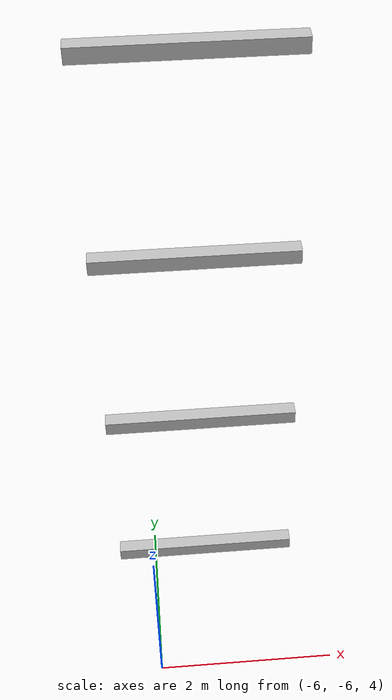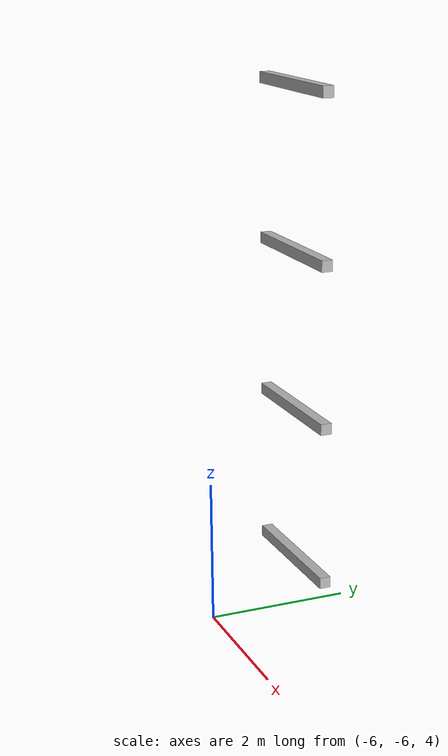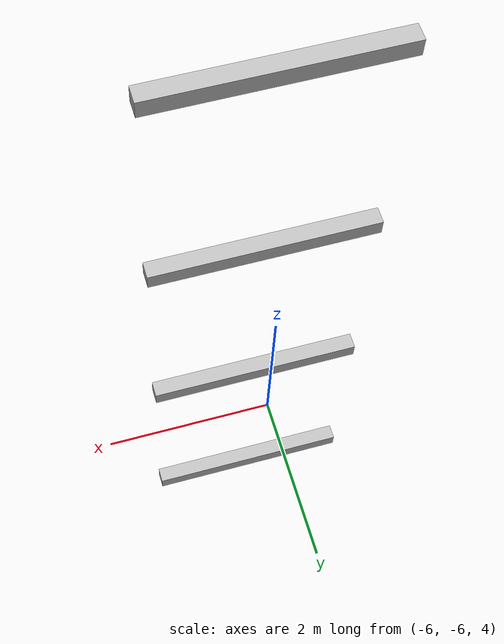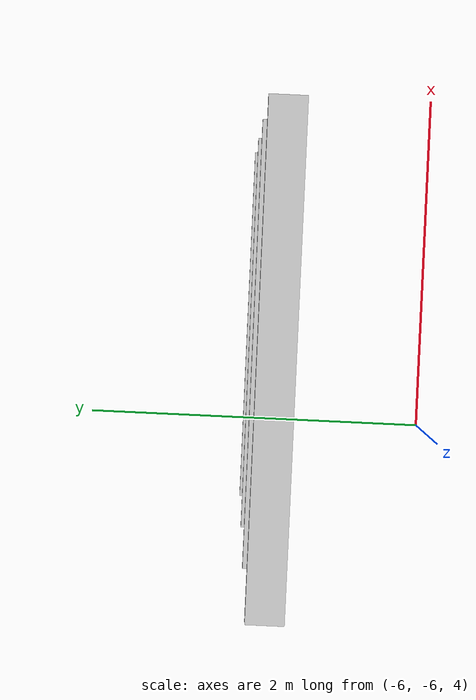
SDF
<sdf version="1.7">
 <world name="default">
  <model name="orthogonal_747_2.000.15_TS">
   <static>1</static>
   <link name="x_link_3_0_0">
    <inertial>
     <mass>1</mass>
     <inertia>
      <ixx>0.166667</ixx>
      <ixy>0</ixy>
      <ixz>0</ixz>
      <iyy>0.166667</iyy>
      <iyz>0</iyz>
      <izz>0.166667</izz>
     </inertia>
    </inertial>
    <pose>1.075 0 7.525 0 -0 0</pose>
    <visual name="visual_0">
     <laser_retro>2556</laser_retro>
     <geometry><box><size>2 1e-06 0.15</size></box></geometry>
     <material>
      <script><name>Gazebo/Grey</name><uri>file://media/materials/scripts/gazebo.material</uri></script>
      <shader type="pixel"><normal_map>__default__</normal_map></shader>
      <ambient>0.678 0.498 0.659 1</ambient>
      <diffuse>0.7 0.7 0.7 1</diffuse>
      <specular>0.01 0.01 0.01 1</specular>
      <emissive>0 0 0 1</emissive>
     </material>
     <pose>0 -0.075 0 0 -0 0</pose>
     <transparency>1</transparency>
    </visual>
    <visual name="visual_1">
     <laser_retro>2557</laser_retro>
     <geometry><box><size>2 1e-06 0.15</size></box></geometry>
     <material>
      <script><name>Gazebo/Grey</name><uri>file://media/materials/scripts/gazebo.material</uri></script>
      <shader type="pixel"><normal_map>__default__</normal_map></shader>
      <ambient>0.447 0.624 0.812 1</ambient>
      <diffuse>0.7 0.7 0.7 1</diffuse>
      <specular>0.01 0.01 0.01 1</specular>
      <emissive>0 0 0 1</emissive>
     </material>
     <pose>0 0.075 0 0 -0 0</pose>
     <transparency>1</transparency>
    </visual>
    <visual name="visual_2">
     <laser_retro>2558</laser_retro>
     <geometry><box><size>2 0.15 1e-06</size></box></geometry>
     <material>
      <script><name>Gazebo/Grey</name><uri>file://media/materials/scripts/gazebo.material</uri></script>
      <shader type="pixel"><normal_map>__default__</normal_map></shader>
      <ambient>0.988 0.686 0.243 1</ambient>
      <diffuse>0.7 0.7 0.7 1</diffuse>
      <specular>0.01 0.01 0.01 1</specular>
      <emissive>0 0 0 1</emissive>
     </material>
     <pose>0 0 -0.075 0 -0 0</pose>
     <transparency>1</transparency>
    </visual>
    <visual name="visual_3">
     <laser_retro>2559</laser_retro>
     <geometry><box><size>1e-06 0.15 0.15</size></box></geometry>
     <material>
      <script><name>Gazebo/Grey</name><uri>file://media/materials/scripts/gazebo.material</uri></script>
      <shader type="pixel"><normal_map>__default__</normal_map></shader>
      <ambient>0.988 0.914 0.31 1</ambient>
      <diffuse>0.7 0.7 0.7 1</diffuse>
      <specular>0.01 0.01 0.01 1</specular>
      <emissive>0 0 0 1</emissive>
     </material>
     <pose>1 0 0 0 -0 0</pose>
     <transparency>1</transparency>
    </visual>
    <visual name="visual_4">
     <laser_retro>2560</laser_retro>
     <geometry><box><size>2 0.15 1e-06</size></box></geometry>
     <material>
      <script><name>Gazebo/Grey</name><uri>file://media/materials/scripts/gazebo.material</uri></script>
      <shader type="pixel"><normal_map>__default__</normal_map></shader>
      <ambient>0.937 0.161 0.161 1</ambient>
      <diffuse>0.7 0.7 0.7 1</diffuse>
      <specular>0.01 0.01 0.01 1</specular>
      <emissive>0 0 0 1</emissive>
     </material>
     <pose>0 0 0.075 0 -0 0</pose>
     <transparency>1</transparency>
    </visual>
    <visual name="visual_5">
     <laser_retro>2561</laser_retro>
     <geometry><box><size>1e-06 0.15 0.15</size></box></geometry>
     <material>
      <script><name>Gazebo/Grey</name><uri>file://media/materials/scripts/gazebo.material</uri></script>
      <shader type="pixel"><normal_map>__default__</normal_map></shader>
      <ambient>0.541 0.886 0.204 1</ambient>
      <diffuse>0.7 0.7 0.7 1</diffuse>
      <specular>0.01 0.01 0.01 1</specular>
      <emissive>0 0 0 1</emissive>
     </material>
     <pose>-1 0 0 0 -0 0</pose>
     <transparency>1</transparency>
    </visual>
    <visual name="visual_texture">
     <geometry><box><size>1.9998 0.149985 0.149985</size></box></geometry>
     <material>
      <script>
       <uri>model://BASE_MODELS/simple_block_v2_textured/materials/scripts</uri>
       <uri>model://BASE_MODELS/simple_block_v2_textured/materials/textures</uri>
       <name>metal</name>
      </script>
     </material>
     <laser_retro>2562</laser_retro>
    </visual>
    <collision name="collision">
     <geometry><box><size>2 0.15 0.15</size></box></geometry>
     <surface>
      <friction>
       <ode><mu>1</mu><mu2>1</mu2><fdir1>0 0 0</fdir1><slip1>0</slip1><slip2>0</slip2></ode>
       <torsional>
        <coefficient>1</coefficient>
        <patch_radius>0</patch_radius>
        <surface_radius>0</surface_radius>
        <use_patch_radius>1</use_patch_radius>
        <ode><slip>0</slip></ode>
       </torsional>
      </friction>
      <bounce><restitution_coefficient>0</restitution_coefficient><threshold>1e+06</threshold></bounce>
      <contact>
       <collide_without_contact>0</collide_without_contact>
       <collide_without_contact_bitmask>1</collide_without_contact_bitmask>
       <collide_bitmask>1</collide_bitmask>
       <ode>
        <soft_cfm>0</soft_cfm>
        <soft_erp>0.2</soft_erp>
        <kp>1e+13</kp>
        <kd>1</kd>
        <max_vel>0.01</max_vel>
        <min_depth>0</min_depth>
       </ode>
       <bullet>
        <split_impulse>1</split_impulse>
        <split_impulse_penetration_threshold>-0.01</split_impulse_penetration_threshold>
        <soft_cfm>0</soft_cfm>
        <soft_erp>0.2</soft_erp>
        <kp>1e+13</kp>
        <kd>1</kd>
       </bullet>
      </contact>
     </surface>
    </collision>
   </link>
   <link name="x_link_4_0_0">
    <inertial>
     <mass>1</mass>
     <inertia>
      <ixx>0.166667</ixx>
      <ixy>0</ixy>
      <ixz>0</ixz>
      <iyy>0.166667</iyy>
      <iyz>0</iyz>
      <izz>0.166667</izz>
     </inertia>
    </inertial>
    <pose>1.075 0 9.675 0 -0 0</pose>
    <visual name="visual_0">
     <laser_retro>3459</laser_retro>
     <geometry><box><size>2 1e-06 0.15</size></box></geometry>
     <material>
      <script><name>Gazebo/Grey</name><uri>file://media/materials/scripts/gazebo.material</uri></script>
      <shader type="pixel"><normal_map>__default__</normal_map></shader>
      <ambient>0.678 0.498 0.659 1</ambient>
      <diffuse>0.7 0.7 0.7 1</diffuse>
      <specular>0.01 0.01 0.01 1</specular>
      <emissive>0 0 0 1</emissive>
     </material>
     <pose>0 -0.075 0 0 -0 0</pose>
     <transparency>1</transparency>
    </visual>
    <visual name="visual_1">
     <laser_retro>3460</laser_retro>
     <geometry><box><size>2 1e-06 0.15</size></box></geometry>
     <material>
      <script><name>Gazebo/Grey</name><uri>file://media/materials/scripts/gazebo.material</uri></script>
      <shader type="pixel"><normal_map>__default__</normal_map></shader>
      <ambient>0.447 0.624 0.812 1</ambient>
      <diffuse>0.7 0.7 0.7 1</diffuse>
      <specular>0.01 0.01 0.01 1</specular>
      <emissive>0 0 0 1</emissive>
     </material>
     <pose>0 0.075 0 0 -0 0</pose>
     <transparency>1</transparency>
    </visual>
    <visual name="visual_2">
     <laser_retro>3461</laser_retro>
     <geometry><box><size>2 0.15 1e-06</size></box></geometry>
     <material>
      <script><name>Gazebo/Grey</name><uri>file://media/materials/scripts/gazebo.material</uri></script>
      <shader type="pixel"><normal_map>__default__</normal_map></shader>
      <ambient>0.988 0.686 0.243 1</ambient>
      <diffuse>0.7 0.7 0.7 1</diffuse>
      <specular>0.01 0.01 0.01 1</specular>
      <emissive>0 0 0 1</emissive>
     </material>
     <pose>0 0 -0.075 0 -0 0</pose>
     <transparency>1</transparency>
    </visual>
    <visual name="visual_3">
     <laser_retro>3462</laser_retro>
     <geometry><box><size>1e-06 0.15 0.15</size></box></geometry>
     <material>
      <script><name>Gazebo/Grey</name><uri>file://media/materials/scripts/gazebo.material</uri></script>
      <shader type="pixel"><normal_map>__default__</normal_map></shader>
      <ambient>0.988 0.914 0.31 1</ambient>
      <diffuse>0.7 0.7 0.7 1</diffuse>
      <specular>0.01 0.01 0.01 1</specular>
      <emissive>0 0 0 1</emissive>
     </material>
     <pose>1 0 0 0 -0 0</pose>
     <transparency>1</transparency>
    </visual>
    <visual name="visual_4">
     <laser_retro>3463</laser_retro>
     <geometry><box><size>2 0.15 1e-06</size></box></geometry>
     <material>
      <script><name>Gazebo/Grey</name><uri>file://media/materials/scripts/gazebo.material</uri></script>
      <shader type="pixel"><normal_map>__default__</normal_map></shader>
      <ambient>0.937 0.161 0.161 1</ambient>
      <diffuse>0.7 0.7 0.7 1</diffuse>
      <specular>0.01 0.01 0.01 1</specular>
      <emissive>0 0 0 1</emissive>
     </material>
     <pose>0 0 0.075 0 -0 0</pose>
     <transparency>1</transparency>
    </visual>
    <visual name="visual_5">
     <laser_retro>3464</laser_retro>
     <geometry><box><size>1e-06 0.15 0.15</size></box></geometry>
     <material>
      <script><name>Gazebo/Grey</name><uri>file://media/materials/scripts/gazebo.material</uri></script>
      <shader type="pixel"><normal_map>__default__</normal_map></shader>
      <ambient>0.541 0.886 0.204 1</ambient>
      <diffuse>0.7 0.7 0.7 1</diffuse>
      <specular>0.01 0.01 0.01 1</specular>
      <emissive>0 0 0 1</emissive>
     </material>
     <pose>-1 0 0 0 -0 0</pose>
     <transparency>1</transparency>
    </visual>
    <visual name="visual_texture">
     <geometry><box><size>1.9998 0.149985 0.149985</size></box></geometry>
     <material>
      <script>
       <uri>model://BASE_MODELS/simple_block_v2_textured/materials/scripts</uri>
       <uri>model://BASE_MODELS/simple_block_v2_textured/materials/textures</uri>
       <name>metal</name>
      </script>
     </material>
     <laser_retro>3465</laser_retro>
    </visual>
    <collision name="collision">
     <geometry><box><size>2 0.15 0.15</size></box></geometry>
     <surface>
      <friction>
       <ode><mu>1</mu><mu2>1</mu2><fdir1>0 0 0</fdir1><slip1>0</slip1><slip2>0</slip2></ode>
       <torsional>
        <coefficient>1</coefficient>
        <patch_radius>0</patch_radius>
        <surface_radius>0</surface_radius>
        <use_patch_radius>1</use_patch_radius>
        <ode><slip>0</slip></ode>
       </torsional>
      </friction>
      <bounce><restitution_coefficient>0</restitution_coefficient><threshold>1e+06</threshold></bounce>
      <contact>
       <collide_without_contact>0</collide_without_contact>
       <collide_without_contact_bitmask>1</collide_without_contact_bitmask>
       <collide_bitmask>1</collide_bitmask>
       <ode>
        <soft_cfm>0</soft_cfm>
        <soft_erp>0.2</soft_erp>
        <kp>1e+13</kp>
        <kd>1</kd>
        <max_vel>0.01</max_vel>
        <min_depth>0</min_depth>
       </ode>
       <bullet>
        <split_impulse>1</split_impulse>
        <split_impulse_penetration_threshold>-0.01</split_impulse_penetration_threshold>
        <soft_cfm>0</soft_cfm>
        <soft_erp>0.2</soft_erp>
        <kp>1e+13</kp>
        <kd>1</kd>
       </bullet>
      </contact>
     </surface>
    </collision>
   </link>
   <link name="x_link_5_0_0">
    <inertial>
     <mass>1</mass>
     <inertia>
      <ixx>0.166667</ixx>
      <ixy>0</ixy>
      <ixz>0</ixz>
      <iyy>0.166667</iyy>
      <iyz>0</iyz>
      <izz>0.166667</izz>
     </inertia>
    </inertial>
    <pose>1.075 0 11.825 0 -0 0</pose>
    <visual name="visual_0">
     <laser_retro>4362</laser_retro>
     <geometry><box><size>2 1e-06 0.15</size></box></geometry>
     <material>
      <script><name>Gazebo/Grey</name><uri>file://media/materials/scripts/gazebo.material</uri></script>
      <shader type="pixel"><normal_map>__default__</normal_map></shader>
      <ambient>0.678 0.498 0.659 1</ambient>
      <diffuse>0.7 0.7 0.7 1</diffuse>
      <specular>0.01 0.01 0.01 1</specular>
      <emissive>0 0 0 1</emissive>
     </material>
     <pose>0 -0.075 0 0 -0 0</pose>
     <transparency>1</transparency>
    </visual>
    <visual name="visual_1">
     <laser_retro>4363</laser_retro>
     <geometry><box><size>2 1e-06 0.15</size></box></geometry>
     <material>
      <script><name>Gazebo/Grey</name><uri>file://media/materials/scripts/gazebo.material</uri></script>
      <shader type="pixel"><normal_map>__default__</normal_map></shader>
      <ambient>0.447 0.624 0.812 1</ambient>
      <diffuse>0.7 0.7 0.7 1</diffuse>
      <specular>0.01 0.01 0.01 1</specular>
      <emissive>0 0 0 1</emissive>
     </material>
     <pose>0 0.075 0 0 -0 0</pose>
     <transparency>1</transparency>
    </visual>
    <visual name="visual_2">
     <laser_retro>4364</laser_retro>
     <geometry><box><size>2 0.15 1e-06</size></box></geometry>
     <material>
      <script><name>Gazebo/Grey</name><uri>file://media/materials/scripts/gazebo.material</uri></script>
      <shader type="pixel"><normal_map>__default__</normal_map></shader>
      <ambient>0.988 0.686 0.243 1</ambient>
      <diffuse>0.7 0.7 0.7 1</diffuse>
      <specular>0.01 0.01 0.01 1</specular>
      <emissive>0 0 0 1</emissive>
     </material>
     <pose>0 0 -0.075 0 -0 0</pose>
     <transparency>1</transparency>
    </visual>
    <visual name="visual_3">
     <laser_retro>4365</laser_retro>
     <geometry><box><size>1e-06 0.15 0.15</size></box></geometry>
     <material>
      <script><name>Gazebo/Grey</name><uri>file://media/materials/scripts/gazebo.material</uri></script>
      <shader type="pixel"><normal_map>__default__</normal_map></shader>
      <ambient>0.988 0.914 0.31 1</ambient>
      <diffuse>0.7 0.7 0.7 1</diffuse>
      <specular>0.01 0.01 0.01 1</specular>
      <emissive>0 0 0 1</emissive>
     </material>
     <pose>1 0 0 0 -0 0</pose>
     <transparency>1</transparency>
    </visual>
    <visual name="visual_4">
     <laser_retro>4366</laser_retro>
     <geometry><box><size>2 0.15 1e-06</size></box></geometry>
     <material>
      <script><name>Gazebo/Grey</name><uri>file://media/materials/scripts/gazebo.material</uri></script>
      <shader type="pixel"><normal_map>__default__</normal_map></shader>
      <ambient>0.937 0.161 0.161 1</ambient>
      <diffuse>0.7 0.7 0.7 1</diffuse>
      <specular>0.01 0.01 0.01 1</specular>
      <emissive>0 0 0 1</emissive>
     </material>
     <pose>0 0 0.075 0 -0 0</pose>
     <transparency>1</transparency>
    </visual>
    <visual name="visual_5">
     <laser_retro>4367</laser_retro>
     <geometry><box><size>1e-06 0.15 0.15</size></box></geometry>
     <material>
      <script><name>Gazebo/Grey</name><uri>file://media/materials/scripts/gazebo.material</uri></script>
      <shader type="pixel"><normal_map>__default__</normal_map></shader>
      <ambient>0.541 0.886 0.204 1</ambient>
      <diffuse>0.7 0.7 0.7 1</diffuse>
      <specular>0.01 0.01 0.01 1</specular>
      <emissive>0 0 0 1</emissive>
     </material>
     <pose>-1 0 0 0 -0 0</pose>
     <transparency>1</transparency>
    </visual>
    <visual name="visual_texture">
     <geometry><box><size>1.9998 0.149985 0.149985</size></box></geometry>
     <material>
      <script>
       <uri>model://BASE_MODELS/simple_block_v2_textured/materials/scripts</uri>
       <uri>model://BASE_MODELS/simple_block_v2_textured/materials/textures</uri>
       <name>metal</name>
      </script>
     </material>
     <laser_retro>4368</laser_retro>
    </visual>
    <collision name="collision">
     <geometry><box><size>2 0.15 0.15</size></box></geometry>
     <surface>
      <friction>
       <ode><mu>1</mu><mu2>1</mu2><fdir1>0 0 0</fdir1><slip1>0</slip1><slip2>0</slip2></ode>
       <torsional>
        <coefficient>1</coefficient>
        <patch_radius>0</patch_radius>
        <surface_radius>0</surface_radius>
        <use_patch_radius>1</use_patch_radius>
        <ode><slip>0</slip></ode>
       </torsional>
      </friction>
      <bounce><restitution_coefficient>0</restitution_coefficient><threshold>1e+06</threshold></bounce>
      <contact>
       <collide_without_contact>0</collide_without_contact>
       <collide_without_contact_bitmask>1</collide_without_contact_bitmask>
       <collide_bitmask>1</collide_bitmask>
       <ode>
        <soft_cfm>0</soft_cfm>
        <soft_erp>0.2</soft_erp>
        <kp>1e+13</kp>
        <kd>1</kd>
        <max_vel>0.01</max_vel>
        <min_depth>0</min_depth>
       </ode>
       <bullet>
        <split_impulse>1</split_impulse>
        <split_impulse_penetration_threshold>-0.01</split_impulse_penetration_threshold>
        <soft_cfm>0</soft_cfm>
        <soft_erp>0.2</soft_erp>
        <kp>1e+13</kp>
        <kd>1</kd>
       </bullet>
      </contact>
     </surface>
    </collision>
   </link>
   <link name="x_link_6_0_0">
    <inertial>
     <mass>1</mass>
     <inertia>
      <ixx>0.166667</ixx>
      <ixy>0</ixy>
      <ixz>0</ixz>
      <iyy>0.166667</iyy>
      <iyz>0</iyz>
      <izz>0.166667</izz>
     </inertia>
    </inertial>
    <pose>1.075 0 13.975 0 -0 0</pose>
    <visual name="visual_0">
     <laser_retro>5265</laser_retro>
     <geometry><box><size>2 1e-06 0.15</size></box></geometry>
     <material>
      <script><name>Gazebo/Grey</name><uri>file://media/materials/scripts/gazebo.material</uri></script>
      <shader type="pixel"><normal_map>__default__</normal_map></shader>
      <ambient>0.678 0.498 0.659 1</ambient>
      <diffuse>0.7 0.7 0.7 1</diffuse>
      <specular>0.01 0.01 0.01 1</specular>
      <emissive>0 0 0 1</emissive>
     </material>
     <pose>0 -0.075 0 0 -0 0</pose>
     <transparency>1</transparency>
    </visual>
    <visual name="visual_1">
     <laser_retro>5266</laser_retro>
     <geometry><box><size>2 1e-06 0.15</size></box></geometry>
     <material>
      <script><name>Gazebo/Grey</name><uri>file://media/materials/scripts/gazebo.material</uri></script>
      <shader type="pixel"><normal_map>__default__</normal_map></shader>
      <ambient>0.447 0.624 0.812 1</ambient>
      <diffuse>0.7 0.7 0.7 1</diffuse>
      <specular>0.01 0.01 0.01 1</specular>
      <emissive>0 0 0 1</emissive>
     </material>
     <pose>0 0.075 0 0 -0 0</pose>
     <transparency>1</transparency>
    </visual>
    <visual name="visual_2">
     <laser_retro>5267</laser_retro>
     <geometry><box><size>2 0.15 1e-06</size></box></geometry>
     <material>
      <script><name>Gazebo/Grey</name><uri>file://media/materials/scripts/gazebo.material</uri></script>
      <shader type="pixel"><normal_map>__default__</normal_map></shader>
      <ambient>0.988 0.686 0.243 1</ambient>
      <diffuse>0.7 0.7 0.7 1</diffuse>
      <specular>0.01 0.01 0.01 1</specular>
      <emissive>0 0 0 1</emissive>
     </material>
     <pose>0 0 -0.075 0 -0 0</pose>
     <transparency>1</transparency>
    </visual>
    <visual name="visual_3">
     <laser_retro>5268</laser_retro>
     <geometry><box><size>1e-06 0.15 0.15</size></box></geometry>
     <material>
      <script><name>Gazebo/Grey</name><uri>file://media/materials/scripts/gazebo.material</uri></script>
      <shader type="pixel"><normal_map>__default__</normal_map></shader>
      <ambient>0.988 0.914 0.31 1</ambient>
      <diffuse>0.7 0.7 0.7 1</diffuse>
      <specular>0.01 0.01 0.01 1</specular>
      <emissive>0 0 0 1</emissive>
     </material>
     <pose>1 0 0 0 -0 0</pose>
     <transparency>1</transparency>
    </visual>
    <visual name="visual_4">
     <laser_retro>5269</laser_retro>
     <geometry><box><size>2 0.15 1e-06</size></box></geometry>
     <material>
      <script><name>Gazebo/Grey</name><uri>file://media/materials/scripts/gazebo.material</uri></script>
      <shader type="pixel"><normal_map>__default__</normal_map></shader>
      <ambient>0.937 0.161 0.161 1</ambient>
      <diffuse>0.7 0.7 0.7 1</diffuse>
      <specular>0.01 0.01 0.01 1</specular>
      <emissive>0 0 0 1</emissive>
     </material>
     <pose>0 0 0.075 0 -0 0</pose>
     <transparency>1</transparency>
    </visual>
    <visual name="visual_5">
     <laser_retro>5270</laser_retro>
     <geometry><box><size>1e-06 0.15 0.15</size></box></geometry>
     <material>
      <script><name>Gazebo/Grey</name><uri>file://media/materials/scripts/gazebo.material</uri></script>
      <shader type="pixel"><normal_map>__default__</normal_map></shader>
      <ambient>0.541 0.886 0.204 1</ambient>
      <diffuse>0.7 0.7 0.7 1</diffuse>
      <specular>0.01 0.01 0.01 1</specular>
      <emissive>0 0 0 1</emissive>
     </material>
     <pose>-1 0 0 0 -0 0</pose>
     <transparency>1</transparency>
    </visual>
    <visual name="visual_texture">
     <geometry><box><size>1.9998 0.149985 0.149985</size></box></geometry>
     <material>
      <script>
       <uri>model://BASE_MODELS/simple_block_v2_textured/materials/scripts</uri>
       <uri>model://BASE_MODELS/simple_block_v2_textured/materials/textures</uri>
       <name>metal</name>
      </script>
     </material>
     <laser_retro>5271</laser_retro>
    </visual>
    <collision name="collision">
     <geometry><box><size>2 0.15 0.15</size></box></geometry>
     <surface>
      <friction>
       <ode><mu>1</mu><mu2>1</mu2><fdir1>0 0 0</fdir1><slip1>0</slip1><slip2>0</slip2></ode>
       <torsional>
        <coefficient>1</coefficient>
        <patch_radius>0</patch_radius>
        <surface_radius>0</surface_radius>
        <use_patch_radius>1</use_patch_radius>
        <ode><slip>0</slip></ode>
       </torsional>
      </friction>
      <bounce><restitution_coefficient>0</restitution_coefficient><threshold>1e+06</threshold></bounce>
      <contact>
       <collide_without_contact>0</collide_without_contact>
       <collide_without_contact_bitmask>1</collide_without_contact_bitmask>
       <collide_bitmask>1</collide_bitmask>
       <ode>
        <soft_cfm>0</soft_cfm>
        <soft_erp>0.2</soft_erp>
        <kp>1e+13</kp>
        <kd>1</kd>
        <max_vel>0.01</max_vel>
        <min_depth>0</min_depth>
       </ode>
       <bullet>
        <split_impulse>1</split_impulse>
        <split_impulse_penetration_threshold>-0.01</split_impulse_penetration_threshold>
        <soft_cfm>0</soft_cfm>
        <soft_erp>0.2</soft_erp>
        <kp>1e+13</kp>
        <kd>1</kd>
       </bullet>
      </contact>
     </surface>
    </collision>
   </link>
   <pose>-6.47624 -5 -2.5 0 -0 0</pose>
  </model>
 </world>
</sdf>
